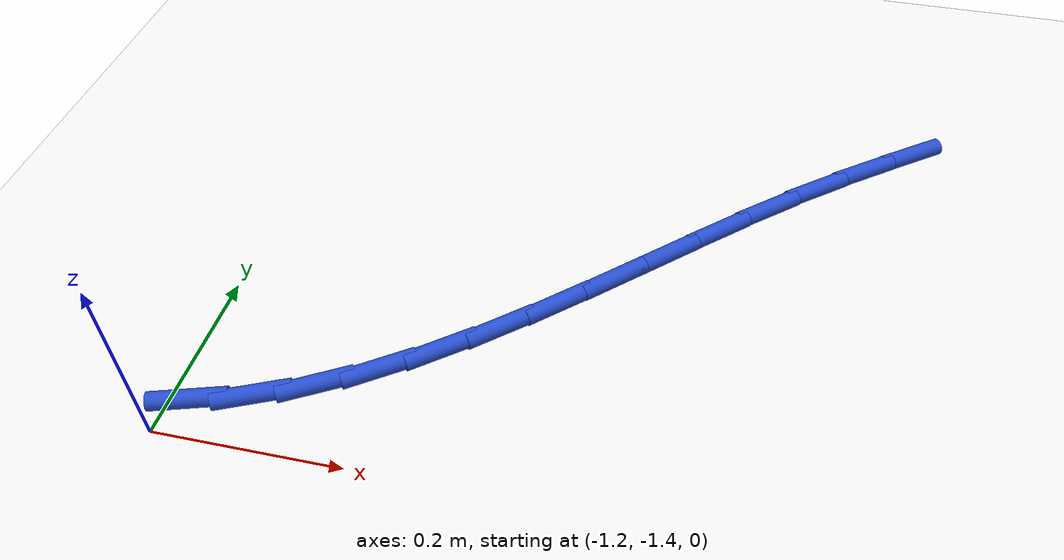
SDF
<sdf version="1.6">
 <world name="default">
  <model name="ground_plane">
   <static>1</static>
   <link name="link">
    <collision name="collision">
     <geometry><plane><normal>0 0 1</normal><size>100 100</size></plane></geometry>
     <surface><friction><ode><mu>100</mu><mu2>50</mu2></ode></friction></surface>
    </collision>
    <visual name="visual">
     <cast_shadows>0</cast_shadows>
     <geometry><plane><normal>0 0 1</normal><size>100 100</size></plane></geometry>
     <material>
      <script><uri>file://media/materials/scripts/gazebo.material</uri><name>Gazebo/WhiteGlow</name></script>
     </material>
    </visual>
   </link>
  </model>
  <model name="line">
   <link name="link_82">
    <pose>-1.1768766048666917 -1.3611999162071933 0.01 0 1.57 0.30320129191411105</pose>
    <collision name="collision">
     <geometry><cylinder><radius>0.01</radius><length>0.08</length></cylinder></geometry>
    </collision>
    <visual name="visual">
     <material>
      <script><name>Gazebo/Blue</name><uri>file://media/materials/scripts/gazebo.material</uri></script>
     </material>
     <geometry><cylinder><radius>0.01</radius><length>0.08</length></cylinder></geometry>
    </visual>
   </link>
   <link name="link_83">
    <pose>-1.1174540386199905 -1.3426097233136223 0.01 0 1.57 0.4282374683342538</pose>
    <collision name="collision">
     <geometry><cylinder><radius>0.01</radius><length>0.08</length></cylinder></geometry>
    </collision>
    <visual name="visual">
     <material>
      <script><name>Gazebo/Blue</name><uri>file://media/materials/scripts/gazebo.material</uri></script>
     </material>
     <geometry><cylinder><radius>0.01</radius><length>0.08</length></cylinder></geometry>
    </visual>
   </link>
   <link name="link_84">
    <pose>-1.0603589683252008 -1.3165464235877333 0.01 0 1.57 0.532777674409872</pose>
    <collision name="collision">
     <geometry><cylinder><radius>0.01</radius><length>0.08</length></cylinder></geometry>
    </collision>
    <visual name="visual">
     <material>
      <script><name>Gazebo/Blue</name><uri>file://media/materials/scripts/gazebo.material</uri></script>
     </material>
     <geometry><cylinder><radius>0.01</radius><length>0.08</length></cylinder></geometry>
    </visual>
   </link>
   <link name="link_85">
    <pose>-1.0052271086976436 -1.2840376826669562 0.01 0 1.57 0.6163884168171742</pose>
    <collision name="collision">
     <geometry><cylinder><radius>0.01</radius><length>0.08</length></cylinder></geometry>
    </collision>
    <visual name="visual">
     <material>
      <script><name>Gazebo/Blue</name><uri>file://media/materials/scripts/gazebo.material</uri></script>
     </material>
     <geometry><cylinder><radius>0.01</radius><length>0.08</length></cylinder></geometry>
    </visual>
   </link>
   <link name="link_86">
    <pose>-0.9516941744526444 -1.2461111661887214 0.01 0 1.57 0.680289141006101</pose>
    <collision name="collision">
     <geometry><cylinder><radius>0.01</radius><length>0.08</length></cylinder></geometry>
    </collision>
    <visual name="visual">
     <material>
      <script><name>Gazebo/Blue</name><uri>file://media/materials/scripts/gazebo.material</uri></script>
     </material>
     <geometry><cylinder><radius>0.01</radius><length>0.08</length></cylinder></geometry>
    </visual>
   </link>
   <link name="link_87">
    <pose>-0.8993958803055249 -1.2037945397904595 0.01 0 1.57 0.7262658049505913</pose>
    <collision name="collision">
     <geometry><cylinder><radius>0.01</radius><length>0.08</length></cylinder></geometry>
    </collision>
    <visual name="visual">
     <material>
      <script><name>Gazebo/Blue</name><uri>file://media/materials/scripts/gazebo.material</uri></script>
     </material>
     <geometry><cylinder><radius>0.01</radius><length>0.08</length></cylinder></geometry>
    </visual>
   </link>
   <link name="link_88">
    <pose>-0.8479679409716102 -1.158115469109601 0.01 0 1.57 0.7560135945365498</pose>
    <collision name="collision">
     <geometry><cylinder><radius>0.01</radius><length>0.08</length></cylinder></geometry>
    </collision>
    <visual name="visual">
     <material>
      <script><name>Gazebo/Blue</name><uri>file://media/materials/scripts/gazebo.material</uri></script>
     </material>
     <geometry><cylinder><radius>0.01</radius><length>0.08</length></cylinder></geometry>
    </visual>
   </link>
   <link name="link_89">
    <pose>-0.7970460711662225 -1.1101016197835758 0.01 0 1.57 0.7708226926157271</pose>
    <collision name="collision">
     <geometry><cylinder><radius>0.01</radius><length>0.08</length></cylinder></geometry>
    </collision>
    <visual name="visual">
     <material>
      <script><name>Gazebo/Blue</name><uri>file://media/materials/scripts/gazebo.material</uri></script>
     </material>
     <geometry><cylinder><radius>0.01</radius><length>0.08</length></cylinder></geometry>
    </visual>
   </link>
   <link name="link_90">
    <pose>-0.7462659856046865 -1.0607806574498153 0.01 0 1.57 0.7714613407913489</pose>
    <collision name="collision">
     <geometry><cylinder><radius>0.01</radius><length>0.08</length></cylinder></geometry>
    </collision>
    <visual name="visual">
     <material>
      <script><name>Gazebo/Blue</name><uri>file://media/materials/scripts/gazebo.material</uri></script>
     </material>
     <geometry><cylinder><radius>0.01</radius><length>0.08</length></cylinder></geometry>
    </visual>
   </link>
   <link name="link_91">
    <pose>-0.6952633990023243 -1.011180247745748 0.01 0 1.57 0.7581534243609087</pose>
    <collision name="collision">
     <geometry><cylinder><radius>0.01</radius><length>0.08</length></cylinder></geometry>
    </collision>
    <visual name="visual">
     <material>
      <script><name>Gazebo/Blue</name><uri>file://media/materials/scripts/gazebo.material</uri></script>
     </material>
     <geometry><cylinder><radius>0.01</radius><length>0.08</length></cylinder></geometry>
    </visual>
   </link>
   <link name="link_92">
    <pose>-0.6436740260744607 -0.9623280563088065 0.01 0 1.57 0.7306014872700279</pose>
    <collision name="collision">
     <geometry><cylinder><radius>0.01</radius><length>0.08</length></cylinder></geometry>
    </collision>
    <visual name="visual">
     <material>
      <script><name>Gazebo/Blue</name><uri>file://media/materials/scripts/gazebo.material</uri></script>
     </material>
     <geometry><cylinder><radius>0.01</radius><length>0.08</length></cylinder></geometry>
    </visual>
   </link>
   <link name="link_93">
    <pose>-0.5911335815364183 -0.9152517487764198 0.01 0 1.57 0.6915514578035589</pose>
    <collision name="collision">
     <geometry><cylinder><radius>0.01</radius><length>0.08</length></cylinder></geometry>
    </collision>
    <visual name="visual">
     <material>
      <script><name>Gazebo/Blue</name><uri>file://media/materials/scripts/gazebo.material</uri></script>
     </material>
     <geometry><cylinder><radius>0.01</radius><length>0.08</length></cylinder></geometry>
    </visual>
   </link>
   <link name="link_94">
    <pose>-0.537399959916994 -0.8707631186874747 0.01 0 1.57 0.6608679710297132</pose>
    <collision name="collision">
     <geometry><cylinder><radius>0.01</radius><length>0.08</length></cylinder></geometry>
    </collision>
    <visual name="visual">
     <material>
      <script><name>Gazebo/Blue</name><uri>file://media/materials/scripts/gazebo.material</uri></script>
     </material>
     <geometry><cylinder><radius>0.01</radius><length>0.08</length></cylinder></geometry>
    </visual>
   </link>
   <link name="link_95">
    <pose>-0.482940269560646 -0.8284208927251161 0.01 0 1.57 0.6463218347235705</pose>
    <collision name="collision">
     <geometry><cylinder><radius>0.01</radius><length>0.08</length></cylinder></geometry>
    </collision>
    <visual name="visual">
     <material>
      <script><name>Gazebo/Blue</name><uri>file://media/materials/scripts/gazebo.material</uri></script>
     </material>
     <geometry><cylinder><radius>0.01</radius><length>0.08</length></cylinder></geometry>
    </visual>
   </link>
  </model>
 </world>
</sdf>
